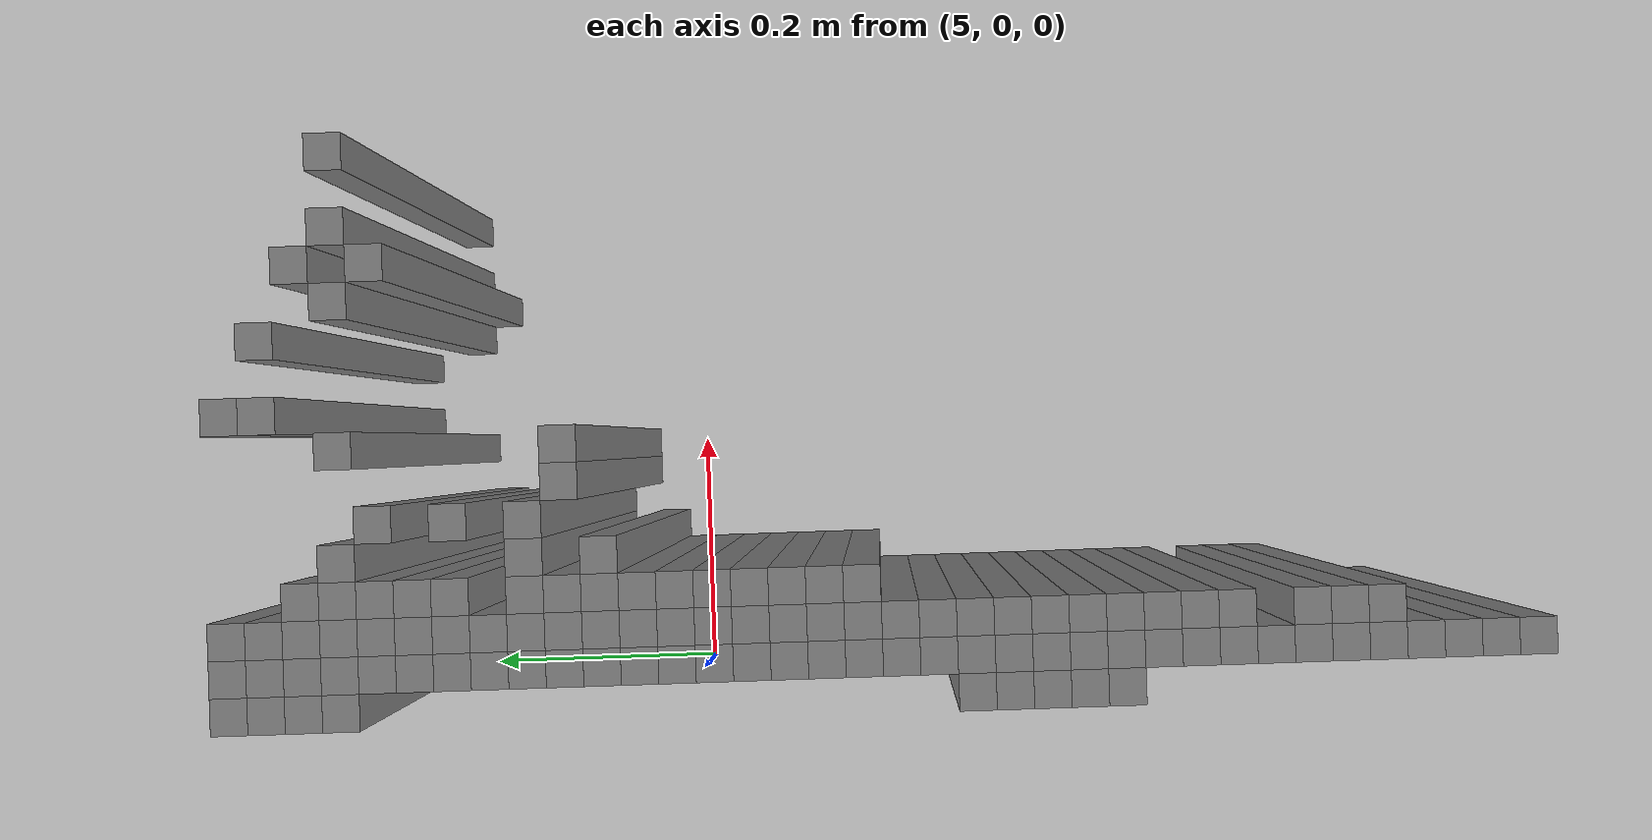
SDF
<sdf version="1.6">
 <world name="map_world">
  <include><uri>model://ground_plane</uri></include>
  <include><uri>model://sun</uri></include>
  <model name="obs_294_38">
   <static>true</static>
   <link name="link">
    <collision name="collision"><geometry><box><size>0.025 0.025 1.0</size></box></geometry></collision>
    <visual name="visual">
     <geometry><box><size>0.025 0.025 1.0</size></box></geometry>
     <material><ambient>0.5 0.5 0.5 1</ambient></material>
    </visual>
   </link>
   <pose>5.023765000000001 0.280929 0.5 0 0 0</pose>
  </model>
  <model name="obs_295_38">
   <static>true</static>
   <link name="link">
    <collision name="collision"><geometry><box><size>0.025 0.025 1.0</size></box></geometry></collision>
    <visual name="visual">
     <geometry><box><size>0.025 0.025 1.0</size></box></geometry>
     <material><ambient>0.5 0.5 0.5 1</ambient></material>
    </visual>
   </link>
   <pose>5.0487649999999995 0.280929 0.5 0 0 0</pose>
  </model>
  <model name="obs_296_38">
   <static>true</static>
   <link name="link">
    <collision name="collision"><geometry><box><size>0.025 0.025 1.0</size></box></geometry></collision>
    <visual name="visual">
     <geometry><box><size>0.025 0.025 1.0</size></box></geometry>
     <material><ambient>0.5 0.5 0.5 1</ambient></material>
    </visual>
   </link>
   <pose>5.073765 0.280929 0.5 0 0 0</pose>
  </model>
  <model name="obs_302_38">
   <static>true</static>
   <link name="link">
    <collision name="collision"><geometry><box><size>0.025 0.025 1.0</size></box></geometry></collision>
    <visual name="visual">
     <geometry><box><size>0.025 0.025 1.0</size></box></geometry>
     <material><ambient>0.5 0.5 0.5 1</ambient></material>
    </visual>
   </link>
   <pose>5.223765 0.280929 0.5 0 0 0</pose>
  </model>
  <model name="obs_294_39">
   <static>true</static>
   <link name="link">
    <collision name="collision"><geometry><box><size>0.025 0.025 1.0</size></box></geometry></collision>
    <visual name="visual">
     <geometry><box><size>0.025 0.025 1.0</size></box></geometry>
     <material><ambient>0.5 0.5 0.5 1</ambient></material>
    </visual>
   </link>
   <pose>5.023765000000001 0.2559290000000001 0.5 0 0 0</pose>
  </model>
  <model name="obs_295_39">
   <static>true</static>
   <link name="link">
    <collision name="collision"><geometry><box><size>0.025 0.025 1.0</size></box></geometry></collision>
    <visual name="visual">
     <geometry><box><size>0.025 0.025 1.0</size></box></geometry>
     <material><ambient>0.5 0.5 0.5 1</ambient></material>
    </visual>
   </link>
   <pose>5.0487649999999995 0.2559290000000001 0.5 0 0 0</pose>
  </model>
  <model name="obs_296_39">
   <static>true</static>
   <link name="link">
    <collision name="collision"><geometry><box><size>0.025 0.025 1.0</size></box></geometry></collision>
    <visual name="visual">
     <geometry><box><size>0.025 0.025 1.0</size></box></geometry>
     <material><ambient>0.5 0.5 0.5 1</ambient></material>
    </visual>
   </link>
   <pose>5.073765 0.2559290000000001 0.5 0 0 0</pose>
  </model>
  <model name="obs_302_39">
   <static>true</static>
   <link name="link">
    <collision name="collision"><geometry><box><size>0.025 0.025 1.0</size></box></geometry></collision>
    <visual name="visual">
     <geometry><box><size>0.025 0.025 1.0</size></box></geometry>
     <material><ambient>0.5 0.5 0.5 1</ambient></material>
    </visual>
   </link>
   <pose>5.223765 0.2559290000000001 0.5 0 0 0</pose>
  </model>
  <model name="obs_304_39">
   <static>true</static>
   <link name="link">
    <collision name="collision"><geometry><box><size>0.025 0.025 1.0</size></box></geometry></collision>
    <visual name="visual">
     <geometry><box><size>0.025 0.025 1.0</size></box></geometry>
     <material><ambient>0.5 0.5 0.5 1</ambient></material>
    </visual>
   </link>
   <pose>5.273765000000001 0.2559290000000001 0.5 0 0 0</pose>
  </model>
  <model name="obs_294_40">
   <static>true</static>
   <link name="link">
    <collision name="collision"><geometry><box><size>0.025 0.025 1.0</size></box></geometry></collision>
    <visual name="visual">
     <geometry><box><size>0.025 0.025 1.0</size></box></geometry>
     <material><ambient>0.5 0.5 0.5 1</ambient></material>
    </visual>
   </link>
   <pose>5.023765000000001 0.23092900000000016 0.5 0 0 0</pose>
  </model>
  <model name="obs_295_40">
   <static>true</static>
   <link name="link">
    <collision name="collision"><geometry><box><size>0.025 0.025 1.0</size></box></geometry></collision>
    <visual name="visual">
     <geometry><box><size>0.025 0.025 1.0</size></box></geometry>
     <material><ambient>0.5 0.5 0.5 1</ambient></material>
    </visual>
   </link>
   <pose>5.0487649999999995 0.23092900000000016 0.5 0 0 0</pose>
  </model>
  <model name="obs_296_40">
   <static>true</static>
   <link name="link">
    <collision name="collision"><geometry><box><size>0.025 0.025 1.0</size></box></geometry></collision>
    <visual name="visual">
     <geometry><box><size>0.025 0.025 1.0</size></box></geometry>
     <material><ambient>0.5 0.5 0.5 1</ambient></material>
    </visual>
   </link>
   <pose>5.073765 0.23092900000000016 0.5 0 0 0</pose>
  </model>
  <model name="obs_297_40">
   <static>true</static>
   <link name="link">
    <collision name="collision"><geometry><box><size>0.025 0.025 1.0</size></box></geometry></collision>
    <visual name="visual">
     <geometry><box><size>0.025 0.025 1.0</size></box></geometry>
     <material><ambient>0.5 0.5 0.5 1</ambient></material>
    </visual>
   </link>
   <pose>5.098765 0.23092900000000016 0.5 0 0 0</pose>
  </model>
  <model name="obs_306_40">
   <static>true</static>
   <link name="link">
    <collision name="collision"><geometry><box><size>0.025 0.025 1.0</size></box></geometry></collision>
    <visual name="visual">
     <geometry><box><size>0.025 0.025 1.0</size></box></geometry>
     <material><ambient>0.5 0.5 0.5 1</ambient></material>
    </visual>
   </link>
   <pose>5.323765 0.23092900000000016 0.5 0 0 0</pose>
  </model>
  <model name="obs_294_41">
   <static>true</static>
   <link name="link">
    <collision name="collision"><geometry><box><size>0.025 0.025 1.0</size></box></geometry></collision>
    <visual name="visual">
     <geometry><box><size>0.025 0.025 1.0</size></box></geometry>
     <material><ambient>0.5 0.5 0.5 1</ambient></material>
    </visual>
   </link>
   <pose>5.023765000000001 0.20592900000000025 0.5 0 0 0</pose>
  </model>
  <model name="obs_295_41">
   <static>true</static>
   <link name="link">
    <collision name="collision"><geometry><box><size>0.025 0.025 1.0</size></box></geometry></collision>
    <visual name="visual">
     <geometry><box><size>0.025 0.025 1.0</size></box></geometry>
     <material><ambient>0.5 0.5 0.5 1</ambient></material>
    </visual>
   </link>
   <pose>5.0487649999999995 0.20592900000000025 0.5 0 0 0</pose>
  </model>
  <model name="obs_296_41">
   <static>true</static>
   <link name="link">
    <collision name="collision"><geometry><box><size>0.025 0.025 1.0</size></box></geometry></collision>
    <visual name="visual">
     <geometry><box><size>0.025 0.025 1.0</size></box></geometry>
     <material><ambient>0.5 0.5 0.5 1</ambient></material>
    </visual>
   </link>
   <pose>5.073765 0.20592900000000025 0.5 0 0 0</pose>
  </model>
  <model name="obs_297_41">
   <static>true</static>
   <link name="link">
    <collision name="collision"><geometry><box><size>0.025 0.025 1.0</size></box></geometry></collision>
    <visual name="visual">
     <geometry><box><size>0.025 0.025 1.0</size></box></geometry>
     <material><ambient>0.5 0.5 0.5 1</ambient></material>
    </visual>
   </link>
   <pose>5.098765 0.20592900000000025 0.5 0 0 0</pose>
  </model>
  <model name="obs_298_41">
   <static>true</static>
   <link name="link">
    <collision name="collision"><geometry><box><size>0.025 0.025 1.0</size></box></geometry></collision>
    <visual name="visual">
     <geometry><box><size>0.025 0.025 1.0</size></box></geometry>
     <material><ambient>0.5 0.5 0.5 1</ambient></material>
    </visual>
   </link>
   <pose>5.123765000000001 0.20592900000000025 0.5 0 0 0</pose>
  </model>
  <model name="obs_301_41">
   <static>true</static>
   <link name="link">
    <collision name="collision"><geometry><box><size>0.025 0.025 1.0</size></box></geometry></collision>
    <visual name="visual">
     <geometry><box><size>0.025 0.025 1.0</size></box></geometry>
     <material><ambient>0.5 0.5 0.5 1</ambient></material>
    </visual>
   </link>
   <pose>5.198765 0.20592900000000025 0.5 0 0 0</pose>
  </model>
  <model name="obs_305_41">
   <static>true</static>
   <link name="link">
    <collision name="collision"><geometry><box><size>0.025 0.025 1.0</size></box></geometry></collision>
    <visual name="visual">
     <geometry><box><size>0.025 0.025 1.0</size></box></geometry>
     <material><ambient>0.5 0.5 0.5 1</ambient></material>
    </visual>
   </link>
   <pose>5.2987649999999995 0.20592900000000025 0.5 0 0 0</pose>
  </model>
  <model name="obs_307_41">
   <static>true</static>
   <link name="link">
    <collision name="collision"><geometry><box><size>0.025 0.025 1.0</size></box></geometry></collision>
    <visual name="visual">
     <geometry><box><size>0.025 0.025 1.0</size></box></geometry>
     <material><ambient>0.5 0.5 0.5 1</ambient></material>
    </visual>
   </link>
   <pose>5.348765 0.20592900000000025 0.5 0 0 0</pose>
  </model>
  <model name="obs_309_41">
   <static>true</static>
   <link name="link">
    <collision name="collision"><geometry><box><size>0.025 0.025 1.0</size></box></geometry></collision>
    <visual name="visual">
     <geometry><box><size>0.025 0.025 1.0</size></box></geometry>
     <material><ambient>0.5 0.5 0.5 1</ambient></material>
    </visual>
   </link>
   <pose>5.398765000000001 0.20592900000000025 0.5 0 0 0</pose>
  </model>
  <model name="obs_295_42">
   <static>true</static>
   <link name="link">
    <collision name="collision"><geometry><box><size>0.025 0.025 1.0</size></box></geometry></collision>
    <visual name="visual">
     <geometry><box><size>0.025 0.025 1.0</size></box></geometry>
     <material><ambient>0.5 0.5 0.5 1</ambient></material>
    </visual>
   </link>
   <pose>5.0487649999999995 0.18092900000000034 0.5 0 0 0</pose>
  </model>
  <model name="obs_296_42">
   <static>true</static>
   <link name="link">
    <collision name="collision"><geometry><box><size>0.025 0.025 1.0</size></box></geometry></collision>
    <visual name="visual">
     <geometry><box><size>0.025 0.025 1.0</size></box></geometry>
     <material><ambient>0.5 0.5 0.5 1</ambient></material>
    </visual>
   </link>
   <pose>5.073765 0.18092900000000034 0.5 0 0 0</pose>
  </model>
  <model name="obs_297_42">
   <static>true</static>
   <link name="link">
    <collision name="collision"><geometry><box><size>0.025 0.025 1.0</size></box></geometry></collision>
    <visual name="visual">
     <geometry><box><size>0.025 0.025 1.0</size></box></geometry>
     <material><ambient>0.5 0.5 0.5 1</ambient></material>
    </visual>
   </link>
   <pose>5.098765 0.18092900000000034 0.5 0 0 0</pose>
  </model>
  <model name="obs_299_42">
   <static>true</static>
   <link name="link">
    <collision name="collision"><geometry><box><size>0.025 0.025 1.0</size></box></geometry></collision>
    <visual name="visual">
     <geometry><box><size>0.025 0.025 1.0</size></box></geometry>
     <material><ambient>0.5 0.5 0.5 1</ambient></material>
    </visual>
   </link>
   <pose>5.148765000000001 0.18092900000000034 0.5 0 0 0</pose>
  </model>
  <model name="obs_306_42">
   <static>true</static>
   <link name="link">
    <collision name="collision"><geometry><box><size>0.025 0.025 1.0</size></box></geometry></collision>
    <visual name="visual">
     <geometry><box><size>0.025 0.025 1.0</size></box></geometry>
     <material><ambient>0.5 0.5 0.5 1</ambient></material>
    </visual>
   </link>
   <pose>5.323765 0.18092900000000034 0.5 0 0 0</pose>
  </model>
  <model name="obs_295_43">
   <static>true</static>
   <link name="link">
    <collision name="collision"><geometry><box><size>0.025 0.025 1.0</size></box></geometry></collision>
    <visual name="visual">
     <geometry><box><size>0.025 0.025 1.0</size></box></geometry>
     <material><ambient>0.5 0.5 0.5 1</ambient></material>
    </visual>
   </link>
   <pose>5.0487649999999995 0.15592899999999998 0.5 0 0 0</pose>
  </model>
  <model name="obs_296_43">
   <static>true</static>
   <link name="link">
    <collision name="collision"><geometry><box><size>0.025 0.025 1.0</size></box></geometry></collision>
    <visual name="visual">
     <geometry><box><size>0.025 0.025 1.0</size></box></geometry>
     <material><ambient>0.5 0.5 0.5 1</ambient></material>
    </visual>
   </link>
   <pose>5.073765 0.15592899999999998 0.5 0 0 0</pose>
  </model>
  <model name="obs_297_43">
   <static>true</static>
   <link name="link">
    <collision name="collision"><geometry><box><size>0.025 0.025 1.0</size></box></geometry></collision>
    <visual name="visual">
     <geometry><box><size>0.025 0.025 1.0</size></box></geometry>
     <material><ambient>0.5 0.5 0.5 1</ambient></material>
    </visual>
   </link>
   <pose>5.098765 0.15592899999999998 0.5 0 0 0</pose>
  </model>
  <model name="obs_295_44">
   <static>true</static>
   <link name="link">
    <collision name="collision"><geometry><box><size>0.025 0.025 1.0</size></box></geometry></collision>
    <visual name="visual">
     <geometry><box><size>0.025 0.025 1.0</size></box></geometry>
     <material><ambient>0.5 0.5 0.5 1</ambient></material>
    </visual>
   </link>
   <pose>5.0487649999999995 0.13092900000000007 0.5 0 0 0</pose>
  </model>
  <model name="obs_296_44">
   <static>true</static>
   <link name="link">
    <collision name="collision"><geometry><box><size>0.025 0.025 1.0</size></box></geometry></collision>
    <visual name="visual">
     <geometry><box><size>0.025 0.025 1.0</size></box></geometry>
     <material><ambient>0.5 0.5 0.5 1</ambient></material>
    </visual>
   </link>
   <pose>5.073765 0.13092900000000007 0.5 0 0 0</pose>
  </model>
  <model name="obs_297_44">
   <static>true</static>
   <link name="link">
    <collision name="collision"><geometry><box><size>0.025 0.025 1.0</size></box></geometry></collision>
    <visual name="visual">
     <geometry><box><size>0.025 0.025 1.0</size></box></geometry>
     <material><ambient>0.5 0.5 0.5 1</ambient></material>
    </visual>
   </link>
   <pose>5.098765 0.13092900000000007 0.5 0 0 0</pose>
  </model>
  <model name="obs_299_44">
   <static>true</static>
   <link name="link">
    <collision name="collision"><geometry><box><size>0.025 0.025 1.0</size></box></geometry></collision>
    <visual name="visual">
     <geometry><box><size>0.025 0.025 1.0</size></box></geometry>
     <material><ambient>0.5 0.5 0.5 1</ambient></material>
    </visual>
   </link>
   <pose>5.148765000000001 0.13092900000000007 0.5 0 0 0</pose>
  </model>
  <model name="obs_295_45">
   <static>true</static>
   <link name="link">
    <collision name="collision"><geometry><box><size>0.025 0.025 1.0</size></box></geometry></collision>
    <visual name="visual">
     <geometry><box><size>0.025 0.025 1.0</size></box></geometry>
     <material><ambient>0.5 0.5 0.5 1</ambient></material>
    </visual>
   </link>
   <pose>5.0487649999999995 0.10592900000000016 0.5 0 0 0</pose>
  </model>
  <model name="obs_296_45">
   <static>true</static>
   <link name="link">
    <collision name="collision"><geometry><box><size>0.025 0.025 1.0</size></box></geometry></collision>
    <visual name="visual">
     <geometry><box><size>0.025 0.025 1.0</size></box></geometry>
     <material><ambient>0.5 0.5 0.5 1</ambient></material>
    </visual>
   </link>
   <pose>5.073765 0.10592900000000016 0.5 0 0 0</pose>
  </model>
  <model name="obs_295_46">
   <static>true</static>
   <link name="link">
    <collision name="collision"><geometry><box><size>0.025 0.025 1.0</size></box></geometry></collision>
    <visual name="visual">
     <geometry><box><size>0.025 0.025 1.0</size></box></geometry>
     <material><ambient>0.5 0.5 0.5 1</ambient></material>
    </visual>
   </link>
   <pose>5.0487649999999995 0.08092900000000025 0.5 0 0 0</pose>
  </model>
  <model name="obs_296_46">
   <static>true</static>
   <link name="link">
    <collision name="collision"><geometry><box><size>0.025 0.025 1.0</size></box></geometry></collision>
    <visual name="visual">
     <geometry><box><size>0.025 0.025 1.0</size></box></geometry>
     <material><ambient>0.5 0.5 0.5 1</ambient></material>
    </visual>
   </link>
   <pose>5.073765 0.08092900000000025 0.5 0 0 0</pose>
  </model>
  <model name="obs_297_46">
   <static>true</static>
   <link name="link">
    <collision name="collision"><geometry><box><size>0.025 0.025 1.0</size></box></geometry></collision>
    <visual name="visual">
     <geometry><box><size>0.025 0.025 1.0</size></box></geometry>
     <material><ambient>0.5 0.5 0.5 1</ambient></material>
    </visual>
   </link>
   <pose>5.098765 0.08092900000000025 0.5 0 0 0</pose>
  </model>
  <model name="obs_298_46">
   <static>true</static>
   <link name="link">
    <collision name="collision"><geometry><box><size>0.025 0.025 1.0</size></box></geometry></collision>
    <visual name="visual">
     <geometry><box><size>0.025 0.025 1.0</size></box></geometry>
     <material><ambient>0.5 0.5 0.5 1</ambient></material>
    </visual>
   </link>
   <pose>5.123765000000001 0.08092900000000025 0.5 0 0 0</pose>
  </model>
  <model name="obs_299_46">
   <static>true</static>
   <link name="link">
    <collision name="collision"><geometry><box><size>0.025 0.025 1.0</size></box></geometry></collision>
    <visual name="visual">
     <geometry><box><size>0.025 0.025 1.0</size></box></geometry>
     <material><ambient>0.5 0.5 0.5 1</ambient></material>
    </visual>
   </link>
   <pose>5.148765000000001 0.08092900000000025 0.5 0 0 0</pose>
  </model>
  <model name="obs_295_47">
   <static>true</static>
   <link name="link">
    <collision name="collision"><geometry><box><size>0.025 0.025 1.0</size></box></geometry></collision>
    <visual name="visual">
     <geometry><box><size>0.025 0.025 1.0</size></box></geometry>
     <material><ambient>0.5 0.5 0.5 1</ambient></material>
    </visual>
   </link>
   <pose>5.0487649999999995 0.05592900000000034 0.5 0 0 0</pose>
  </model>
  <model name="obs_296_47">
   <static>true</static>
   <link name="link">
    <collision name="collision"><geometry><box><size>0.025 0.025 1.0</size></box></geometry></collision>
    <visual name="visual">
     <geometry><box><size>0.025 0.025 1.0</size></box></geometry>
     <material><ambient>0.5 0.5 0.5 1</ambient></material>
    </visual>
   </link>
   <pose>5.073765 0.05592900000000034 0.5 0 0 0</pose>
  </model>
  <model name="obs_297_47">
   <static>true</static>
   <link name="link">
    <collision name="collision"><geometry><box><size>0.025 0.025 1.0</size></box></geometry></collision>
    <visual name="visual">
     <geometry><box><size>0.025 0.025 1.0</size></box></geometry>
     <material><ambient>0.5 0.5 0.5 1</ambient></material>
    </visual>
   </link>
   <pose>5.098765 0.05592900000000034 0.5 0 0 0</pose>
  </model>
  <model name="obs_300_47">
   <static>true</static>
   <link name="link">
    <collision name="collision"><geometry><box><size>0.025 0.025 1.0</size></box></geometry></collision>
    <visual name="visual">
     <geometry><box><size>0.025 0.025 1.0</size></box></geometry>
     <material><ambient>0.5 0.5 0.5 1</ambient></material>
    </visual>
   </link>
   <pose>5.1737649999999995 0.05592900000000034 0.5 0 0 0</pose>
  </model>
  <model name="obs_301_47">
   <static>true</static>
   <link name="link">
    <collision name="collision"><geometry><box><size>0.025 0.025 1.0</size></box></geometry></collision>
    <visual name="visual">
     <geometry><box><size>0.025 0.025 1.0</size></box></geometry>
     <material><ambient>0.5 0.5 0.5 1</ambient></material>
    </visual>
   </link>
   <pose>5.198765 0.05592900000000034 0.5 0 0 0</pose>
  </model>
  <model name="obs_295_48">
   <static>true</static>
   <link name="link">
    <collision name="collision"><geometry><box><size>0.025 0.025 1.0</size></box></geometry></collision>
    <visual name="visual">
     <geometry><box><size>0.025 0.025 1.0</size></box></geometry>
     <material><ambient>0.5 0.5 0.5 1</ambient></material>
    </visual>
   </link>
   <pose>5.0487649999999995 0.030928999999999984 0.5 0 0 0</pose>
  </model>
  <model name="obs_296_48">
   <static>true</static>
   <link name="link">
    <collision name="collision"><geometry><box><size>0.025 0.025 1.0</size></box></geometry></collision>
    <visual name="visual">
     <geometry><box><size>0.025 0.025 1.0</size></box></geometry>
     <material><ambient>0.5 0.5 0.5 1</ambient></material>
    </visual>
   </link>
   <pose>5.073765 0.030928999999999984 0.5 0 0 0</pose>
  </model>
  <model name="obs_297_48">
   <static>true</static>
   <link name="link">
    <collision name="collision"><geometry><box><size>0.025 0.025 1.0</size></box></geometry></collision>
    <visual name="visual">
     <geometry><box><size>0.025 0.025 1.0</size></box></geometry>
     <material><ambient>0.5 0.5 0.5 1</ambient></material>
    </visual>
   </link>
   <pose>5.098765 0.030928999999999984 0.5 0 0 0</pose>
  </model>
  <model name="obs_298_48">
   <static>true</static>
   <link name="link">
    <collision name="collision"><geometry><box><size>0.025 0.025 1.0</size></box></geometry></collision>
    <visual name="visual">
     <geometry><box><size>0.025 0.025 1.0</size></box></geometry>
     <material><ambient>0.5 0.5 0.5 1</ambient></material>
    </visual>
   </link>
   <pose>5.123765000000001 0.030928999999999984 0.5 0 0 0</pose>
  </model>
  <model name="obs_295_49">
   <static>true</static>
   <link name="link">
    <collision name="collision"><geometry><box><size>0.025 0.025 1.0</size></box></geometry></collision>
    <visual name="visual">
     <geometry><box><size>0.025 0.025 1.0</size></box></geometry>
     <material><ambient>0.5 0.5 0.5 1</ambient></material>
    </visual>
   </link>
   <pose>5.0487649999999995 0.005929000000000073 0.5 0 0 0</pose>
  </model>
  <model name="obs_296_49">
   <static>true</static>
   <link name="link">
    <collision name="collision"><geometry><box><size>0.025 0.025 1.0</size></box></geometry></collision>
    <visual name="visual">
     <geometry><box><size>0.025 0.025 1.0</size></box></geometry>
     <material><ambient>0.5 0.5 0.5 1</ambient></material>
    </visual>
   </link>
   <pose>5.073765 0.005929000000000073 0.5 0 0 0</pose>
  </model>
  <model name="obs_297_49">
   <static>true</static>
   <link name="link">
    <collision name="collision"><geometry><box><size>0.025 0.025 1.0</size></box></geometry></collision>
    <visual name="visual">
     <geometry><box><size>0.025 0.025 1.0</size></box></geometry>
     <material><ambient>0.5 0.5 0.5 1</ambient></material>
    </visual>
   </link>
   <pose>5.098765 0.005929000000000073 0.5 0 0 0</pose>
  </model>
  <model name="obs_295_50">
   <static>true</static>
   <link name="link">
    <collision name="collision"><geometry><box><size>0.025 0.025 1.0</size></box></geometry></collision>
    <visual name="visual">
     <geometry><box><size>0.025 0.025 1.0</size></box></geometry>
     <material><ambient>0.5 0.5 0.5 1</ambient></material>
    </visual>
   </link>
   <pose>5.0487649999999995 -0.019070999999999838 0.5 0 0 0</pose>
  </model>
  <model name="obs_296_50">
   <static>true</static>
   <link name="link">
    <collision name="collision"><geometry><box><size>0.025 0.025 1.0</size></box></geometry></collision>
    <visual name="visual">
     <geometry><box><size>0.025 0.025 1.0</size></box></geometry>
     <material><ambient>0.5 0.5 0.5 1</ambient></material>
    </visual>
   </link>
   <pose>5.073765 -0.019070999999999838 0.5 0 0 0</pose>
  </model>
  <model name="obs_297_50">
   <static>true</static>
   <link name="link">
    <collision name="collision"><geometry><box><size>0.025 0.025 1.0</size></box></geometry></collision>
    <visual name="visual">
     <geometry><box><size>0.025 0.025 1.0</size></box></geometry>
     <material><ambient>0.5 0.5 0.5 1</ambient></material>
    </visual>
   </link>
   <pose>5.098765 -0.019070999999999838 0.5 0 0 0</pose>
  </model>
  <model name="obs_295_51">
   <static>true</static>
   <link name="link">
    <collision name="collision"><geometry><box><size>0.025 0.025 1.0</size></box></geometry></collision>
    <visual name="visual">
     <geometry><box><size>0.025 0.025 1.0</size></box></geometry>
     <material><ambient>0.5 0.5 0.5 1</ambient></material>
    </visual>
   </link>
   <pose>5.0487649999999995 -0.04407099999999975 0.5 0 0 0</pose>
  </model>
  <model name="obs_296_51">
   <static>true</static>
   <link name="link">
    <collision name="collision"><geometry><box><size>0.025 0.025 1.0</size></box></geometry></collision>
    <visual name="visual">
     <geometry><box><size>0.025 0.025 1.0</size></box></geometry>
     <material><ambient>0.5 0.5 0.5 1</ambient></material>
    </visual>
   </link>
   <pose>5.073765 -0.04407099999999975 0.5 0 0 0</pose>
  </model>
  <model name="obs_297_51">
   <static>true</static>
   <link name="link">
    <collision name="collision"><geometry><box><size>0.025 0.025 1.0</size></box></geometry></collision>
    <visual name="visual">
     <geometry><box><size>0.025 0.025 1.0</size></box></geometry>
     <material><ambient>0.5 0.5 0.5 1</ambient></material>
    </visual>
   </link>
   <pose>5.098765 -0.04407099999999975 0.5 0 0 0</pose>
  </model>
  <model name="obs_295_52">
   <static>true</static>
   <link name="link">
    <collision name="collision"><geometry><box><size>0.025 0.025 1.0</size></box></geometry></collision>
    <visual name="visual">
     <geometry><box><size>0.025 0.025 1.0</size></box></geometry>
     <material><ambient>0.5 0.5 0.5 1</ambient></material>
    </visual>
   </link>
   <pose>5.0487649999999995 -0.06907099999999988 0.5 0 0 0</pose>
  </model>
  <model name="obs_296_52">
   <static>true</static>
   <link name="link">
    <collision name="collision"><geometry><box><size>0.025 0.025 1.0</size></box></geometry></collision>
    <visual name="visual">
     <geometry><box><size>0.025 0.025 1.0</size></box></geometry>
     <material><ambient>0.5 0.5 0.5 1</ambient></material>
    </visual>
   </link>
   <pose>5.073765 -0.06907099999999988 0.5 0 0 0</pose>
  </model>
  <model name="obs_297_52">
   <static>true</static>
   <link name="link">
    <collision name="collision"><geometry><box><size>0.025 0.025 1.0</size></box></geometry></collision>
    <visual name="visual">
     <geometry><box><size>0.025 0.025 1.0</size></box></geometry>
     <material><ambient>0.5 0.5 0.5 1</ambient></material>
    </visual>
   </link>
   <pose>5.098765 -0.06907099999999988 0.5 0 0 0</pose>
  </model>
  <model name="obs_295_53">
   <static>true</static>
   <link name="link">
    <collision name="collision"><geometry><box><size>0.025 0.025 1.0</size></box></geometry></collision>
    <visual name="visual">
     <geometry><box><size>0.025 0.025 1.0</size></box></geometry>
     <material><ambient>0.5 0.5 0.5 1</ambient></material>
    </visual>
   </link>
   <pose>5.0487649999999995 -0.0940709999999998 0.5 0 0 0</pose>
  </model>
  <model name="obs_296_53">
   <static>true</static>
   <link name="link">
    <collision name="collision"><geometry><box><size>0.025 0.025 1.0</size></box></geometry></collision>
    <visual name="visual">
     <geometry><box><size>0.025 0.025 1.0</size></box></geometry>
     <material><ambient>0.5 0.5 0.5 1</ambient></material>
    </visual>
   </link>
   <pose>5.073765 -0.0940709999999998 0.5 0 0 0</pose>
  </model>
  <model name="obs_297_53">
   <static>true</static>
   <link name="link">
    <collision name="collision"><geometry><box><size>0.025 0.025 1.0</size></box></geometry></collision>
    <visual name="visual">
     <geometry><box><size>0.025 0.025 1.0</size></box></geometry>
     <material><ambient>0.5 0.5 0.5 1</ambient></material>
    </visual>
   </link>
   <pose>5.098765 -0.0940709999999998 0.5 0 0 0</pose>
  </model>
  <model name="obs_295_54">
   <static>true</static>
   <link name="link">
    <collision name="collision"><geometry><box><size>0.025 0.025 1.0</size></box></geometry></collision>
    <visual name="visual">
     <geometry><box><size>0.025 0.025 1.0</size></box></geometry>
     <material><ambient>0.5 0.5 0.5 1</ambient></material>
    </visual>
   </link>
   <pose>5.0487649999999995 -0.11907099999999993 0.5 0 0 0</pose>
  </model>
  <model name="obs_296_54">
   <static>true</static>
   <link name="link">
    <collision name="collision"><geometry><box><size>0.025 0.025 1.0</size></box></geometry></collision>
    <visual name="visual">
     <geometry><box><size>0.025 0.025 1.0</size></box></geometry>
     <material><ambient>0.5 0.5 0.5 1</ambient></material>
    </visual>
   </link>
   <pose>5.073765 -0.11907099999999993 0.5 0 0 0</pose>
  </model>
  <model name="obs_297_54">
   <static>true</static>
   <link name="link">
    <collision name="collision"><geometry><box><size>0.025 0.025 1.0</size></box></geometry></collision>
    <visual name="visual">
     <geometry><box><size>0.025 0.025 1.0</size></box></geometry>
     <material><ambient>0.5 0.5 0.5 1</ambient></material>
    </visual>
   </link>
   <pose>5.098765 -0.11907099999999993 0.5 0 0 0</pose>
  </model>
  <model name="obs_295_55">
   <static>true</static>
   <link name="link">
    <collision name="collision"><geometry><box><size>0.025 0.025 1.0</size></box></geometry></collision>
    <visual name="visual">
     <geometry><box><size>0.025 0.025 1.0</size></box></geometry>
     <material><ambient>0.5 0.5 0.5 1</ambient></material>
    </visual>
   </link>
   <pose>5.0487649999999995 -0.14407099999999984 0.5 0 0 0</pose>
  </model>
  <model name="obs_296_55">
   <static>true</static>
   <link name="link">
    <collision name="collision"><geometry><box><size>0.025 0.025 1.0</size></box></geometry></collision>
    <visual name="visual">
     <geometry><box><size>0.025 0.025 1.0</size></box></geometry>
     <material><ambient>0.5 0.5 0.5 1</ambient></material>
    </visual>
   </link>
   <pose>5.073765 -0.14407099999999984 0.5 0 0 0</pose>
  </model>
  <model name="obs_297_55">
   <static>true</static>
   <link name="link">
    <collision name="collision"><geometry><box><size>0.025 0.025 1.0</size></box></geometry></collision>
    <visual name="visual">
     <geometry><box><size>0.025 0.025 1.0</size></box></geometry>
     <material><ambient>0.5 0.5 0.5 1</ambient></material>
    </visual>
   </link>
   <pose>5.098765 -0.14407099999999984 0.5 0 0 0</pose>
  </model>
  <model name="obs_295_56">
   <static>true</static>
   <link name="link">
    <collision name="collision"><geometry><box><size>0.025 0.025 1.0</size></box></geometry></collision>
    <visual name="visual">
     <geometry><box><size>0.025 0.025 1.0</size></box></geometry>
     <material><ambient>0.5 0.5 0.5 1</ambient></material>
    </visual>
   </link>
   <pose>5.0487649999999995 -0.16907099999999975 0.5 0 0 0</pose>
  </model>
  <model name="obs_296_56">
   <static>true</static>
   <link name="link">
    <collision name="collision"><geometry><box><size>0.025 0.025 1.0</size></box></geometry></collision>
    <visual name="visual">
     <geometry><box><size>0.025 0.025 1.0</size></box></geometry>
     <material><ambient>0.5 0.5 0.5 1</ambient></material>
    </visual>
   </link>
   <pose>5.073765 -0.16907099999999975 0.5 0 0 0</pose>
  </model>
  <model name="obs_295_57">
   <static>true</static>
   <link name="link">
    <collision name="collision"><geometry><box><size>0.025 0.025 1.0</size></box></geometry></collision>
    <visual name="visual">
     <geometry><box><size>0.025 0.025 1.0</size></box></geometry>
     <material><ambient>0.5 0.5 0.5 1</ambient></material>
    </visual>
   </link>
   <pose>5.0487649999999995 -0.19407099999999988 0.5 0 0 0</pose>
  </model>
  <model name="obs_296_57">
   <static>true</static>
   <link name="link">
    <collision name="collision"><geometry><box><size>0.025 0.025 1.0</size></box></geometry></collision>
    <visual name="visual">
     <geometry><box><size>0.025 0.025 1.0</size></box></geometry>
     <material><ambient>0.5 0.5 0.5 1</ambient></material>
    </visual>
   </link>
   <pose>5.073765 -0.19407099999999988 0.5 0 0 0</pose>
  </model>
  <model name="obs_294_58">
   <static>true</static>
   <link name="link">
    <collision name="collision"><geometry><box><size>0.025 0.025 1.0</size></box></geometry></collision>
    <visual name="visual">
     <geometry><box><size>0.025 0.025 1.0</size></box></geometry>
     <material><ambient>0.5 0.5 0.5 1</ambient></material>
    </visual>
   </link>
   <pose>5.023765000000001 -0.2190709999999998 0.5 0 0 0</pose>
  </model>
  <model name="obs_295_58">
   <static>true</static>
   <link name="link">
    <collision name="collision"><geometry><box><size>0.025 0.025 1.0</size></box></geometry></collision>
    <visual name="visual">
     <geometry><box><size>0.025 0.025 1.0</size></box></geometry>
     <material><ambient>0.5 0.5 0.5 1</ambient></material>
    </visual>
   </link>
   <pose>5.0487649999999995 -0.2190709999999998 0.5 0 0 0</pose>
  </model>
  <model name="obs_296_58">
   <static>true</static>
   <link name="link">
    <collision name="collision"><geometry><box><size>0.025 0.025 1.0</size></box></geometry></collision>
    <visual name="visual">
     <geometry><box><size>0.025 0.025 1.0</size></box></geometry>
     <material><ambient>0.5 0.5 0.5 1</ambient></material>
    </visual>
   </link>
   <pose>5.073765 -0.2190709999999998 0.5 0 0 0</pose>
  </model>
  <model name="obs_294_59">
   <static>true</static>
   <link name="link">
    <collision name="collision"><geometry><box><size>0.025 0.025 1.0</size></box></geometry></collision>
    <visual name="visual">
     <geometry><box><size>0.025 0.025 1.0</size></box></geometry>
     <material><ambient>0.5 0.5 0.5 1</ambient></material>
    </visual>
   </link>
   <pose>5.023765000000001 -0.24407099999999993 0.5 0 0 0</pose>
  </model>
  <model name="obs_295_59">
   <static>true</static>
   <link name="link">
    <collision name="collision"><geometry><box><size>0.025 0.025 1.0</size></box></geometry></collision>
    <visual name="visual">
     <geometry><box><size>0.025 0.025 1.0</size></box></geometry>
     <material><ambient>0.5 0.5 0.5 1</ambient></material>
    </visual>
   </link>
   <pose>5.0487649999999995 -0.24407099999999993 0.5 0 0 0</pose>
  </model>
  <model name="obs_296_59">
   <static>true</static>
   <link name="link">
    <collision name="collision"><geometry><box><size>0.025 0.025 1.0</size></box></geometry></collision>
    <visual name="visual">
     <geometry><box><size>0.025 0.025 1.0</size></box></geometry>
     <material><ambient>0.5 0.5 0.5 1</ambient></material>
    </visual>
   </link>
   <pose>5.073765 -0.24407099999999993 0.5 0 0 0</pose>
  </model>
  <model name="obs_294_60">
   <static>true</static>
   <link name="link">
    <collision name="collision"><geometry><box><size>0.025 0.025 1.0</size></box></geometry></collision>
    <visual name="visual">
     <geometry><box><size>0.025 0.025 1.0</size></box></geometry>
     <material><ambient>0.5 0.5 0.5 1</ambient></material>
    </visual>
   </link>
   <pose>5.023765000000001 -0.26907099999999984 0.5 0 0 0</pose>
  </model>
  <model name="obs_295_60">
   <static>true</static>
   <link name="link">
    <collision name="collision"><geometry><box><size>0.025 0.025 1.0</size></box></geometry></collision>
    <visual name="visual">
     <geometry><box><size>0.025 0.025 1.0</size></box></geometry>
     <material><ambient>0.5 0.5 0.5 1</ambient></material>
    </visual>
   </link>
   <pose>5.0487649999999995 -0.26907099999999984 0.5 0 0 0</pose>
  </model>
  <model name="obs_296_60">
   <static>true</static>
   <link name="link">
    <collision name="collision"><geometry><box><size>0.025 0.025 1.0</size></box></geometry></collision>
    <visual name="visual">
     <geometry><box><size>0.025 0.025 1.0</size></box></geometry>
     <material><ambient>0.5 0.5 0.5 1</ambient></material>
    </visual>
   </link>
   <pose>5.073765 -0.26907099999999984 0.5 0 0 0</pose>
  </model>
  <model name="obs_294_61">
   <static>true</static>
   <link name="link">
    <collision name="collision"><geometry><box><size>0.025 0.025 1.0</size></box></geometry></collision>
    <visual name="visual">
     <geometry><box><size>0.025 0.025 1.0</size></box></geometry>
     <material><ambient>0.5 0.5 0.5 1</ambient></material>
    </visual>
   </link>
   <pose>5.023765000000001 -0.29407099999999975 0.5 0 0 0</pose>
  </model>
  <model name="obs_295_61">
   <static>true</static>
   <link name="link">
    <collision name="collision"><geometry><box><size>0.025 0.025 1.0</size></box></geometry></collision>
    <visual name="visual">
     <geometry><box><size>0.025 0.025 1.0</size></box></geometry>
     <material><ambient>0.5 0.5 0.5 1</ambient></material>
    </visual>
   </link>
   <pose>5.0487649999999995 -0.29407099999999975 0.5 0 0 0</pose>
  </model>
  <model name="obs_296_61">
   <static>true</static>
   <link name="link">
    <collision name="collision"><geometry><box><size>0.025 0.025 1.0</size></box></geometry></collision>
    <visual name="visual">
     <geometry><box><size>0.025 0.025 1.0</size></box></geometry>
     <material><ambient>0.5 0.5 0.5 1</ambient></material>
    </visual>
   </link>
   <pose>5.073765 -0.29407099999999975 0.5 0 0 0</pose>
  </model>
  <model name="obs_294_62">
   <static>true</static>
   <link name="link">
    <collision name="collision"><geometry><box><size>0.025 0.025 1.0</size></box></geometry></collision>
    <visual name="visual">
     <geometry><box><size>0.025 0.025 1.0</size></box></geometry>
     <material><ambient>0.5 0.5 0.5 1</ambient></material>
    </visual>
   </link>
   <pose>5.023765000000001 -0.3190709999999999 0.5 0 0 0</pose>
  </model>
  <model name="obs_295_62">
   <static>true</static>
   <link name="link">
    <collision name="collision"><geometry><box><size>0.025 0.025 1.0</size></box></geometry></collision>
    <visual name="visual">
     <geometry><box><size>0.025 0.025 1.0</size></box></geometry>
     <material><ambient>0.5 0.5 0.5 1</ambient></material>
    </visual>
   </link>
   <pose>5.0487649999999995 -0.3190709999999999 0.5 0 0 0</pose>
  </model>
  <model name="obs_296_62">
   <static>true</static>
   <link name="link">
    <collision name="collision"><geometry><box><size>0.025 0.025 1.0</size></box></geometry></collision>
    <visual name="visual">
     <geometry><box><size>0.025 0.025 1.0</size></box></geometry>
     <material><ambient>0.5 0.5 0.5 1</ambient></material>
    </visual>
   </link>
   <pose>5.073765 -0.3190709999999999 0.5 0 0 0</pose>
  </model>
  <model name="obs_295_63">
   <static>true</static>
   <link name="link">
    <collision name="collision"><geometry><box><size>0.025 0.025 1.0</size></box></geometry></collision>
    <visual name="visual">
     <geometry><box><size>0.025 0.025 1.0</size></box></geometry>
     <material><ambient>0.5 0.5 0.5 1</ambient></material>
    </visual>
   </link>
   <pose>5.0487649999999995 -0.3440709999999998 0.5 0 0 0</pose>
  </model>
  <model name="obs_296_63">
   <static>true</static>
   <link name="link">
    <collision name="collision"><geometry><box><size>0.025 0.025 1.0</size></box></geometry></collision>
    <visual name="visual">
     <geometry><box><size>0.025 0.025 1.0</size></box></geometry>
     <material><ambient>0.5 0.5 0.5 1</ambient></material>
    </visual>
   </link>
   <pose>5.073765 -0.3440709999999998 0.5 0 0 0</pose>
  </model>
  <model name="obs_295_64">
   <static>true</static>
   <link name="link">
    <collision name="collision"><geometry><box><size>0.025 0.025 1.0</size></box></geometry></collision>
    <visual name="visual">
     <geometry><box><size>0.025 0.025 1.0</size></box></geometry>
     <material><ambient>0.5 0.5 0.5 1</ambient></material>
    </visual>
   </link>
   <pose>5.0487649999999995 -0.3690709999999999 0.5 0 0 0</pose>
  </model>
  <model name="obs_296_64">
   <static>true</static>
   <link name="link">
    <collision name="collision"><geometry><box><size>0.025 0.025 1.0</size></box></geometry></collision>
    <visual name="visual">
     <geometry><box><size>0.025 0.025 1.0</size></box></geometry>
     <material><ambient>0.5 0.5 0.5 1</ambient></material>
    </visual>
   </link>
   <pose>5.073765 -0.3690709999999999 0.5 0 0 0</pose>
  </model>
  <model name="obs_295_65">
   <static>true</static>
   <link name="link">
    <collision name="collision"><geometry><box><size>0.025 0.025 1.0</size></box></geometry></collision>
    <visual name="visual">
     <geometry><box><size>0.025 0.025 1.0</size></box></geometry>
     <material><ambient>0.5 0.5 0.5 1</ambient></material>
    </visual>
   </link>
   <pose>5.0487649999999995 -0.39407099999999984 0.5 0 0 0</pose>
  </model>
  <model name="obs_296_65">
   <static>true</static>
   <link name="link">
    <collision name="collision"><geometry><box><size>0.025 0.025 1.0</size></box></geometry></collision>
    <visual name="visual">
     <geometry><box><size>0.025 0.025 1.0</size></box></geometry>
     <material><ambient>0.5 0.5 0.5 1</ambient></material>
    </visual>
   </link>
   <pose>5.073765 -0.39407099999999984 0.5 0 0 0</pose>
  </model>
  <model name="obs_295_66">
   <static>true</static>
   <link name="link">
    <collision name="collision"><geometry><box><size>0.025 0.025 1.0</size></box></geometry></collision>
    <visual name="visual">
     <geometry><box><size>0.025 0.025 1.0</size></box></geometry>
     <material><ambient>0.5 0.5 0.5 1</ambient></material>
    </visual>
   </link>
   <pose>5.0487649999999995 -0.41907099999999975 0.5 0 0 0</pose>
  </model>
  <model name="obs_295_67">
   <static>true</static>
   <link name="link">
    <collision name="collision"><geometry><box><size>0.025 0.025 1.0</size></box></geometry></collision>
    <visual name="visual">
     <geometry><box><size>0.025 0.025 1.0</size></box></geometry>
     <material><ambient>0.5 0.5 0.5 1</ambient></material>
    </visual>
   </link>
   <pose>5.0487649999999995 -0.4440709999999999 0.5 0 0 0</pose>
  </model>
  <model name="obs_296_67">
   <static>true</static>
   <link name="link">
    <collision name="collision"><geometry><box><size>0.025 0.025 1.0</size></box></geometry></collision>
    <visual name="visual">
     <geometry><box><size>0.025 0.025 1.0</size></box></geometry>
     <material><ambient>0.5 0.5 0.5 1</ambient></material>
    </visual>
   </link>
   <pose>5.073765 -0.4440709999999999 0.5 0 0 0</pose>
  </model>
  <model name="obs_295_68">
   <static>true</static>
   <link name="link">
    <collision name="collision"><geometry><box><size>0.025 0.025 1.0</size></box></geometry></collision>
    <visual name="visual">
     <geometry><box><size>0.025 0.025 1.0</size></box></geometry>
     <material><ambient>0.5 0.5 0.5 1</ambient></material>
    </visual>
   </link>
   <pose>5.0487649999999995 -0.4690709999999998 0.5 0 0 0</pose>
  </model>
  <model name="obs_296_68">
   <static>true</static>
   <link name="link">
    <collision name="collision"><geometry><box><size>0.025 0.025 1.0</size></box></geometry></collision>
    <visual name="visual">
     <geometry><box><size>0.025 0.025 1.0</size></box></geometry>
     <material><ambient>0.5 0.5 0.5 1</ambient></material>
    </visual>
   </link>
   <pose>5.073765 -0.4690709999999998 0.5 0 0 0</pose>
  </model>
  <model name="obs_295_69">
   <static>true</static>
   <link name="link">
    <collision name="collision"><geometry><box><size>0.025 0.025 1.0</size></box></geometry></collision>
    <visual name="visual">
     <geometry><box><size>0.025 0.025 1.0</size></box></geometry>
     <material><ambient>0.5 0.5 0.5 1</ambient></material>
    </visual>
   </link>
   <pose>5.0487649999999995 -0.4940709999999999 0.5 0 0 0</pose>
  </model>
  <model name="obs_296_69">
   <static>true</static>
   <link name="link">
    <collision name="collision"><geometry><box><size>0.025 0.025 1.0</size></box></geometry></collision>
    <visual name="visual">
     <geometry><box><size>0.025 0.025 1.0</size></box></geometry>
     <material><ambient>0.5 0.5 0.5 1</ambient></material>
    </visual>
   </link>
   <pose>5.073765 -0.4940709999999999 0.5 0 0 0</pose>
  </model>
  <model name="obs_295_70">
   <static>true</static>
   <link name="link">
    <collision name="collision"><geometry><box><size>0.025 0.025 1.0</size></box></geometry></collision>
    <visual name="visual">
     <geometry><box><size>0.025 0.025 1.0</size></box></geometry>
     <material><ambient>0.5 0.5 0.5 1</ambient></material>
    </visual>
   </link>
   <pose>5.0487649999999995 -0.5190709999999998 0.5 0 0 0</pose>
  </model>
  <model name="obs_295_71">
   <static>true</static>
   <link name="link">
    <collision name="collision"><geometry><box><size>0.025 0.025 1.0</size></box></geometry></collision>
    <visual name="visual">
     <geometry><box><size>0.025 0.025 1.0</size></box></geometry>
     <material><ambient>0.5 0.5 0.5 1</ambient></material>
    </visual>
   </link>
   <pose>5.0487649999999995 -0.5440709999999997 0.5 0 0 0</pose>
  </model>
  <model name="obs_295_72">
   <static>true</static>
   <link name="link">
    <collision name="collision"><geometry><box><size>0.025 0.025 1.0</size></box></geometry></collision>
    <visual name="visual">
     <geometry><box><size>0.025 0.025 1.0</size></box></geometry>
     <material><ambient>0.5 0.5 0.5 1</ambient></material>
    </visual>
   </link>
   <pose>5.0487649999999995 -0.5690709999999999 0.5 0 0 0</pose>
  </model>
  <model name="obs_295_73">
   <static>true</static>
   <link name="link">
    <collision name="collision"><geometry><box><size>0.025 0.025 1.0</size></box></geometry></collision>
    <visual name="visual">
     <geometry><box><size>0.025 0.025 1.0</size></box></geometry>
     <material><ambient>0.5 0.5 0.5 1</ambient></material>
    </visual>
   </link>
   <pose>5.0487649999999995 -0.5940709999999998 0.5 0 0 0</pose>
  </model>
 </world>
</sdf>
